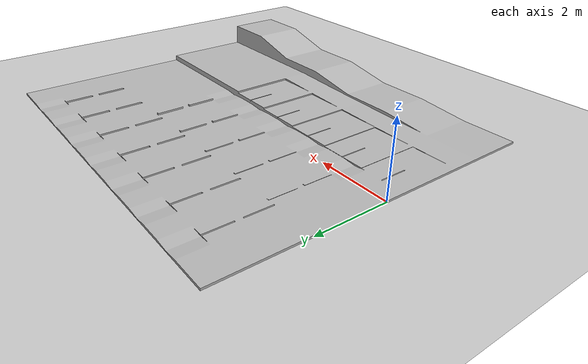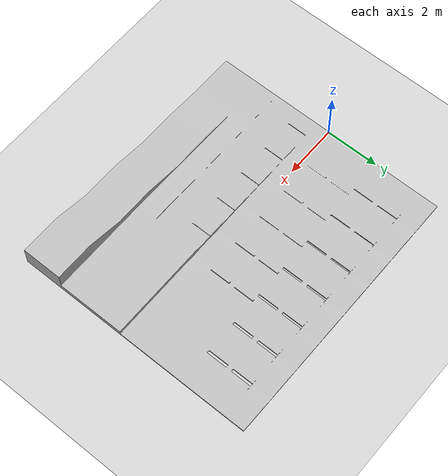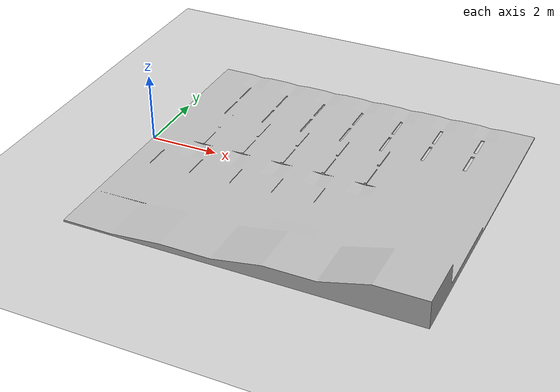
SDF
<?xml version="1.0" ?>
<sdf version="1.4">
  <world name="default">
    <physics type="ode">
      <gravity>0 0 -9.8</gravity>
      <ode>
        <solver>
          <type>quick</type>
          <iters>40</iters>
          <sor>1.0</sor>
        </solver>
        <constraints>
          <cfm>0.0</cfm>
          <erp>0.2</erp>
          <contact_max_correcting_vel>100.0</contact_max_correcting_vel>
          <contact_surface_layer>0.0</contact_surface_layer>
        </constraints>
      </ode>
      <max_step_size>0.001</max_step_size>
    </physics>
    <!-- A global light source -->
    <include>
      <uri>model://sun</uri>
    </include>
    <!-- A ground plane -->
    <include>
      <uri>model://ground_plane</uri>
    </include>
	<include>
	  <uri>model://robotnik_test_ground_v1</uri>
	  <pose>0 0 0.010 0 0 0</pose>
	</include>
  </world>
</sdf>

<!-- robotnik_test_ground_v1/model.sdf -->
<sdf version="1.4">
<model name="robotnik_test_ground_v1">
  <pose>0 0 0 0 0 0</pose>
  <static>true</static>

    <link name='robotnik_test_ground_v1'>
	<pose> 0 0 0.030 0 0 0</pose>
		<inertial>
			<mass>0.000001</mass>
		</inertial>
		<collision name="collision">
			<geometry>
			<mesh>
				<uri>model://robotnik_test_ground_v1/meshes/robotnik_test_ground_v1.stl</uri>
			</mesh>
			</geometry>
			<surface>
			  <friction>
				<ode>
					<mu>100</mu>
					<mu2>100</mu2>
				</ode>
			  </friction>
              <bounce>
                <restitution_coefficient>0.5</restitution_coefficient>
                <threshold>0</threshold>
              </bounce>
              <contact>
                <ode>
                  <max_vel>10</max_vel>
                </ode>
              </contact>
            </surface>
		</collision>
		<visual name="visual">
			<geometry>
				<mesh>
					<uri>model://robotnik_test_ground_v1/meshes/robotnik_test_ground_v1.stl</uri>
				</mesh>
			</geometry>
			<material>
				<script>
					<uri>model://robotnik_test_ground_v1/materials/scripts</uri>
					<uri>model://robotnik_test_ground_v1/materials/textures</uri>
					<name>Gazebo/TestGround</name>
				</script>
			</material>
			<transparency>0</transparency>
			<cast_shadows>1</cast_shadows>
		</visual>
	</link>

  </model>
</sdf>
